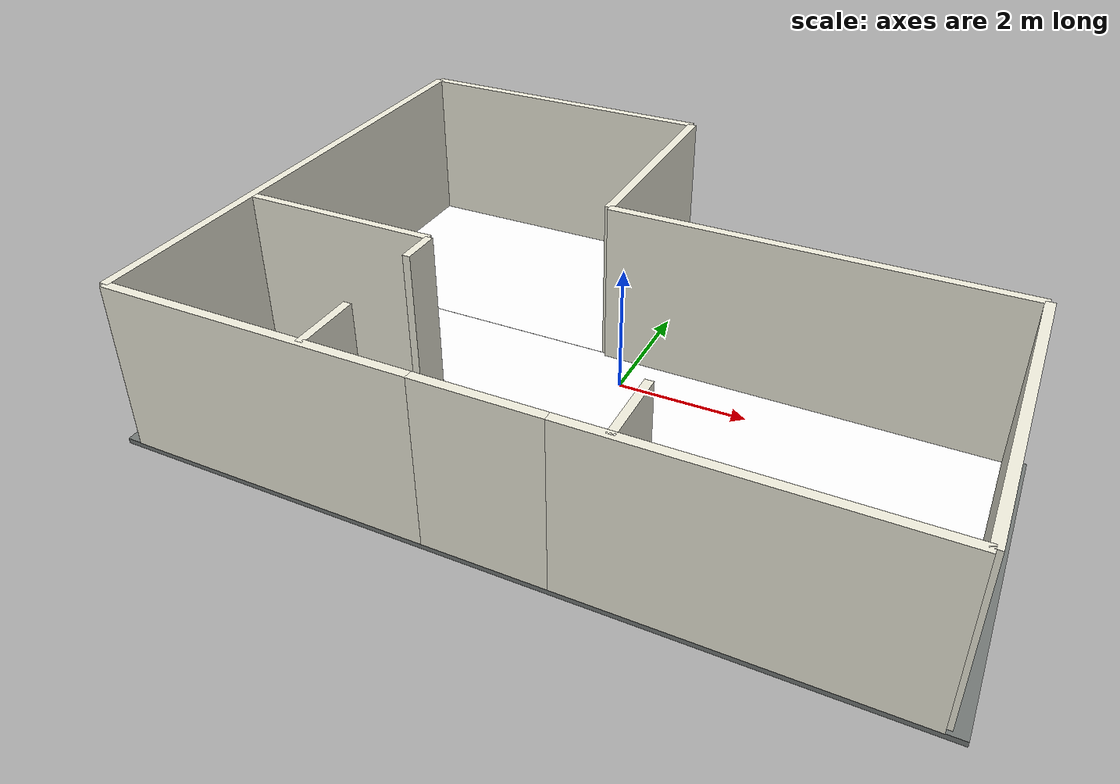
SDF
<?xml version="1.0"?>
<sdf version="1.9">
  <model name="house3_shell">
    <static>true</static>
    <link name="link">

      <!-- True L-shaped house: south bedroom/living wing plus northwest kitchen wing. -->
      <visual name="foundation_south_wing_visual">
        <pose>0.00 -1.75 -0.055 0 0 0</pose>
        <geometry><box><size>11.70 5.00 0.08</size></box></geometry>
        <material><ambient>0.34 0.36 0.35 1</ambient><diffuse>0.45 0.47 0.46 1</diffuse></material>
      </visual>
      <collision name="foundation_south_wing_collision">
        <pose>0.00 -1.75 -0.055 0 0 0</pose>
        <geometry><box><size>11.70 5.00 0.08</size></box></geometry>
      </collision>
      <visual name="foundation_north_wing_visual">
        <pose>-3.175 2.45 -0.055 0 0 0</pose>
        <geometry><box><size>5.35 3.70 0.08</size></box></geometry>
        <material><ambient>0.34 0.36 0.35 1</ambient><diffuse>0.45 0.47 0.46 1</diffuse></material>
      </visual>
      <collision name="foundation_north_wing_collision">
        <pose>-3.175 2.45 -0.055 0 0 0</pose>
        <geometry><box><size>5.35 3.70 0.08</size></box></geometry>
      </collision>

      <visual name="floor_south_wing_visual">
        <pose>0.00 -1.75 -0.006 0 0 0</pose>
        <geometry><box><size>11.20 4.90 0.012</size></box></geometry>
        <material>
          <ambient>1 1 1 1</ambient>
          <diffuse>1 1 1 1</diffuse>
          <specular>0.05 0.05 0.05 1</specular>
          <pbr>
            <metal>
              <albedo_map>materials/textures/wood_albedo.jpg</albedo_map>
              <normal_map>materials/textures/wood_normal.jpg</normal_map>
              <roughness_map>materials/textures/wood_roughness.jpg</roughness_map>
              <metalness>0.0</metalness>
            </metal>
          </pbr>
        </material>
      </visual>
      <collision name="floor_south_wing_collision">
        <pose>0.00 -1.75 -0.006 0 0 0</pose>
        <geometry><box><size>11.20 4.90 0.012</size></box></geometry>
      </collision>
      <visual name="floor_north_wing_visual">
        <pose>-3.175 2.45 -0.005 0 0 0</pose>
        <geometry><box><size>5.25 3.50 0.012</size></box></geometry>
        <material>
          <ambient>1 1 1 1</ambient>
          <diffuse>1 1 1 1</diffuse>
          <specular>0.05 0.05 0.05 1</specular>
          <pbr>
            <metal>
              <albedo_map>materials/textures/wood_albedo.jpg</albedo_map>
              <normal_map>materials/textures/wood_normal.jpg</normal_map>
              <roughness_map>materials/textures/wood_roughness.jpg</roughness_map>
              <metalness>0.0</metalness>
            </metal>
          </pbr>
        </material>
      </visual>
      <collision name="floor_north_wing_collision">
        <pose>-3.175 2.45 -0.005 0 0 0</pose>
        <geometry><box><size>5.25 3.50 0.012</size></box></geometry>
      </collision>

      <!-- Exterior L-shaped boundary. -->
      <collision name="wall_west_full">
        <pose>-5.60 0.0 1.30 0 0 0</pose>
        <geometry><box><size>0.14 8.40 2.60</size></box></geometry>
      </collision>
      <visual name="wall_west_full_visual">
        <pose>-5.60 0.0 1.30 0 0 0</pose>
        <geometry><box><size>0.14 8.40 2.60</size></box></geometry>
        <material><ambient>0.80 0.81 0.77 1</ambient><diffuse>0.93 0.92 0.86 1</diffuse></material>
      </visual>
      <collision name="wall_south_left">
        <pose>-3.25 -4.20 1.30 0 0 0</pose>
        <geometry><box><size>4.70 0.14 2.60</size></box></geometry>
      </collision>
      <visual name="wall_south_left_visual">
        <pose>-3.25 -4.20 1.30 0 0 0</pose>
        <geometry><box><size>4.70 0.14 2.60</size></box></geometry>
        <material><ambient>0.80 0.81 0.77 1</ambient><diffuse>0.93 0.92 0.86 1</diffuse></material>
      </visual>
      <collision name="wall_south_right">
        <pose>3.25 -4.20 1.30 0 0 0</pose>
        <geometry><box><size>4.70 0.14 2.60</size></box></geometry>
      </collision>
      <visual name="wall_south_right_visual">
        <pose>3.25 -4.20 1.30 0 0 0</pose>
        <geometry><box><size>4.70 0.14 2.60</size></box></geometry>
        <material><ambient>0.80 0.81 0.77 1</ambient><diffuse>0.93 0.92 0.86 1</diffuse></material>
      </visual>
      <collision name="front_entry_closure">
        <pose>0.00 -4.20 1.30 0 0 0</pose>
        <geometry><box><size>1.80 0.14 2.60</size></box></geometry>
      </collision>
      <visual name="front_entry_closure_visual">
        <pose>0.00 -4.20 1.30 0 0 0</pose>
        <geometry><box><size>1.80 0.14 2.60</size></box></geometry>
        <material><ambient>0.80 0.81 0.77 1</ambient><diffuse>0.93 0.92 0.86 1</diffuse></material>
      </visual>
      <collision name="wall_east_south_wing">
        <pose>5.60 -1.75 1.30 0 0 0</pose>
        <geometry><box><size>0.14 4.90 2.60</size></box></geometry>
      </collision>
      <visual name="wall_east_south_wing_visual">
        <pose>5.60 -1.75 1.30 0 0 0</pose>
        <geometry><box><size>0.14 4.90 2.60</size></box></geometry>
        <material><ambient>0.80 0.81 0.77 1</ambient><diffuse>0.93 0.92 0.86 1</diffuse></material>
      </visual>
      <collision name="wall_inner_north_south_wing">
        <pose>2.525 0.70 1.30 0 0 0</pose>
        <geometry><box><size>6.15 0.14 2.60</size></box></geometry>
      </collision>
      <visual name="wall_inner_north_south_wing_visual">
        <pose>2.525 0.70 1.30 0 0 0</pose>
        <geometry><box><size>6.15 0.14 2.60</size></box></geometry>
        <material><ambient>0.80 0.81 0.77 1</ambient><diffuse>0.93 0.92 0.86 1</diffuse></material>
      </visual>
      <collision name="wall_inner_east_north_wing">
        <pose>-0.55 2.45 1.30 0 0 0</pose>
        <geometry><box><size>0.14 3.50 2.60</size></box></geometry>
      </collision>
      <visual name="wall_inner_east_north_wing_visual">
        <pose>-0.55 2.45 1.30 0 0 0</pose>
        <geometry><box><size>0.14 3.50 2.60</size></box></geometry>
        <material><ambient>0.80 0.81 0.77 1</ambient><diffuse>0.93 0.92 0.86 1</diffuse></material>
      </visual>
      <collision name="wall_north_wing">
        <pose>-3.075 4.20 1.30 0 0 0</pose>
        <geometry><box><size>5.05 0.14 2.60</size></box></geometry>
      </collision>
      <visual name="wall_north_wing_visual">
        <pose>-3.075 4.20 1.30 0 0 0</pose>
        <geometry><box><size>5.05 0.14 2.60</size></box></geometry>
        <material><ambient>0.80 0.81 0.77 1</ambient><diffuse>0.93 0.92 0.86 1</diffuse></material>
      </visual>

      <!-- Interior walls: bedroom split and living opening. -->
      <collision name="bedroom_east_wall_south">
        <pose>-2.45 -3.70 1.30 0 0 0</pose>
        <geometry><box><size>0.12 1.00 2.60</size></box></geometry>
      </collision>
      <visual name="bedroom_east_wall_south_visual">
        <pose>-2.45 -3.70 1.30 0 0 0</pose>
        <geometry><box><size>0.12 1.00 2.60</size></box></geometry>
        <material><ambient>0.80 0.81 0.77 1</ambient><diffuse>0.93 0.92 0.86 1</diffuse></material>
      </visual>
      <collision name="bedroom_east_wall_north">
        <pose>-2.45 -1.55 1.30 0 0 0</pose>
        <geometry><box><size>0.12 0.60 2.60</size></box></geometry>
      </collision>
      <visual name="bedroom_east_wall_north_visual">
        <pose>-2.45 -1.55 1.30 0 0 0</pose>
        <geometry><box><size>0.12 0.60 2.60</size></box></geometry>
        <material><ambient>0.80 0.81 0.77 1</ambient><diffuse>0.93 0.92 0.86 1</diffuse></material>
      </visual>
      <collision name="bedroom_north_wall">
        <pose>-4.025 -1.25 1.30 0 0 0</pose>
        <geometry><box><size>3.15 0.12 2.60</size></box></geometry>
      </collision>
      <visual name="bedroom_north_wall_visual">
        <pose>-4.025 -1.25 1.30 0 0 0</pose>
        <geometry><box><size>3.15 0.12 2.60</size></box></geometry>
        <material><ambient>0.80 0.81 0.77 1</ambient><diffuse>0.93 0.92 0.86 1</diffuse></material>
      </visual>

      <collision name="living_west_wall_south">
        <pose>1.65 -3.65 1.30 0 0 0</pose>
        <geometry><box><size>0.12 1.10 2.60</size></box></geometry>
      </collision>
      <visual name="living_west_wall_south_visual">
        <pose>1.65 -3.65 1.30 0 0 0</pose>
        <geometry><box><size>0.12 1.10 2.60</size></box></geometry>
        <material><ambient>0.80 0.81 0.77 1</ambient><diffuse>0.93 0.92 0.86 1</diffuse></material>
      </visual>

      <!-- Low thresholds show doors without blocking the robot or lidar. -->
      <visual name="bedroom_threshold">
        <pose>-2.44 -2.47 0.035 0 0 1.5708</pose>
        <geometry><box><size>1.08 0.08 0.04</size></box></geometry>
        <material><ambient>0.18 0.16 0.14 1</ambient><diffuse>0.30 0.26 0.21 1</diffuse></material>
      </visual>
      <visual name="living_threshold">
        <pose>1.64 -2.43 0.035 0 0 1.5708</pose>
        <geometry><box><size>1.34 0.08 0.04</size></box></geometry>
        <material><ambient>0.18 0.16 0.14 1</ambient><diffuse>0.30 0.26 0.21 1</diffuse></material>
      </visual>
    </link>
  </model>
</sdf>
